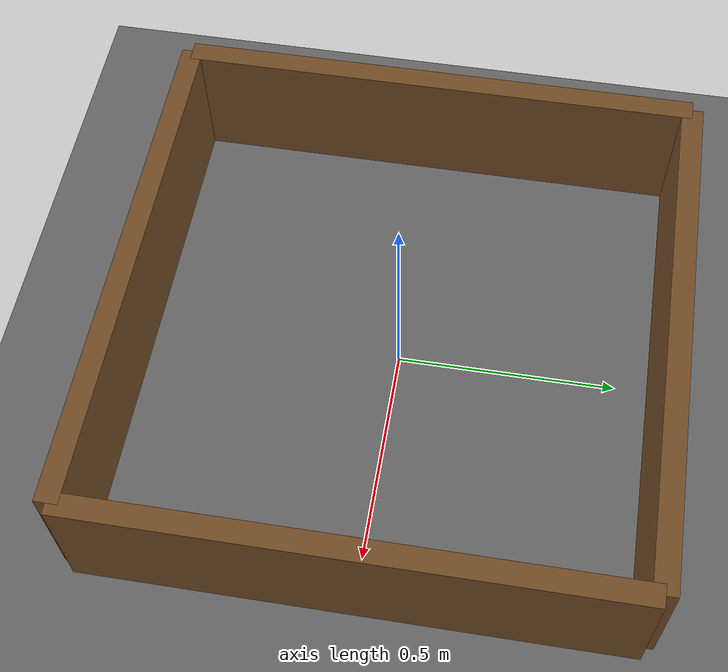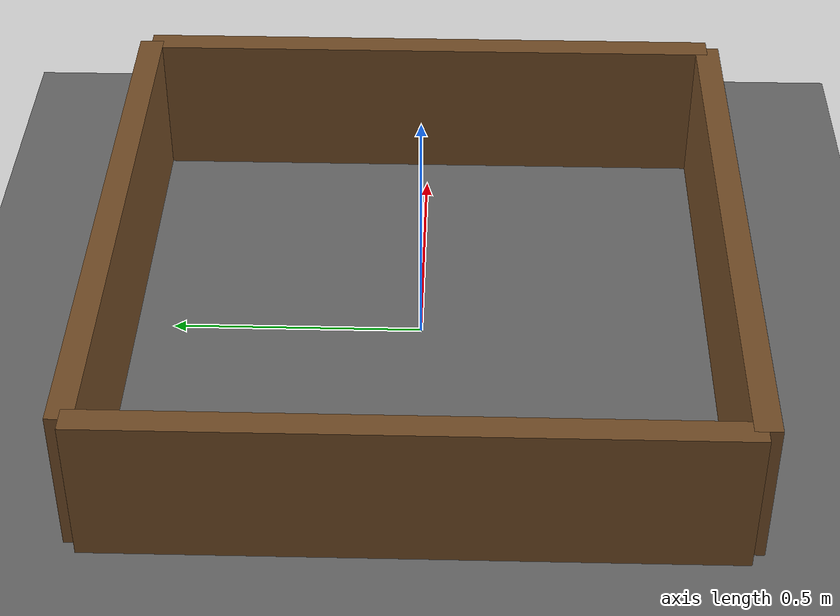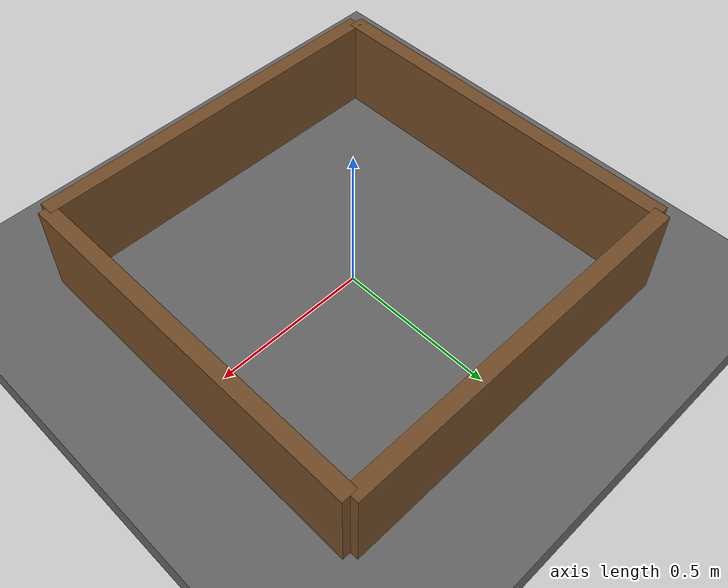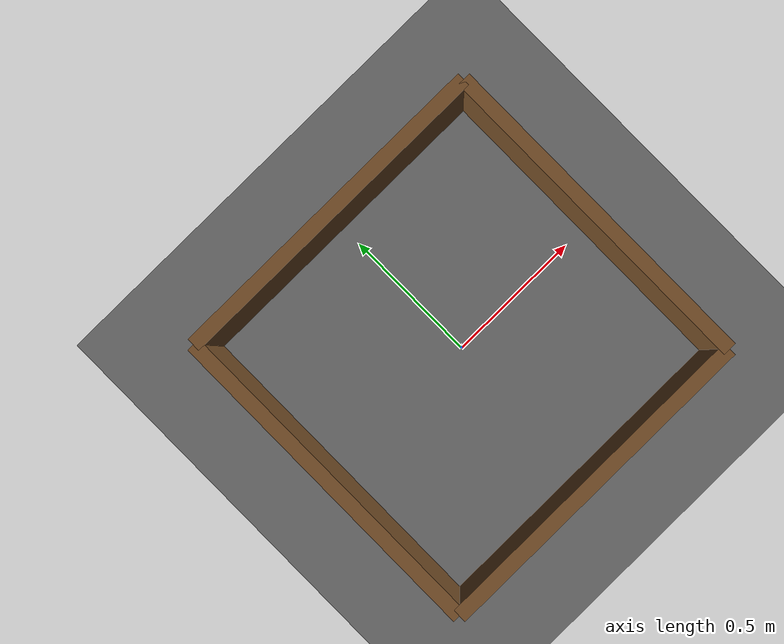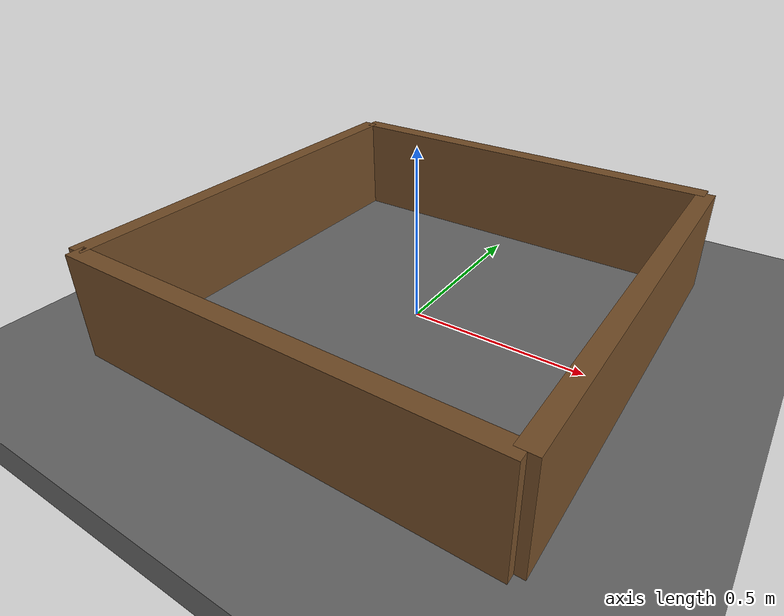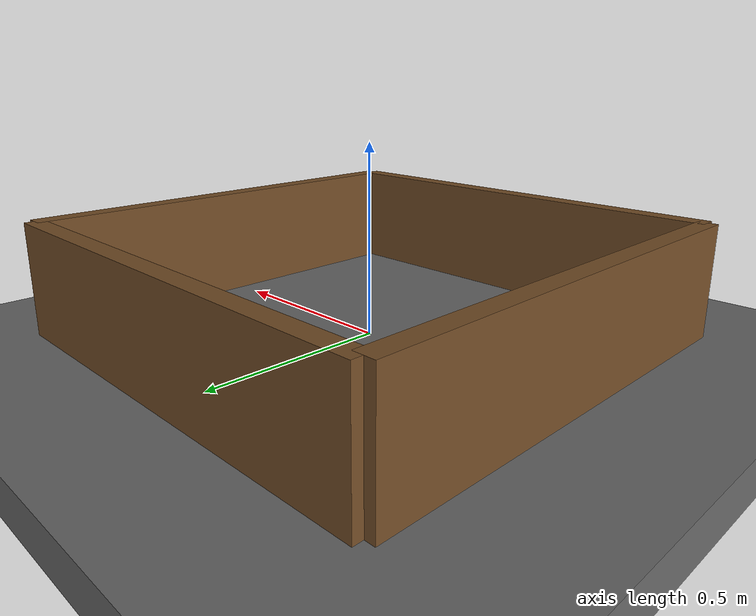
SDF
<?xml version="1.0" ?>
<sdf version="1.10">
  <world name="empty_world">
    <scene>
      <ambient>0.6 0.6 0.6 1</ambient>
      <background>0.5 0.5 0.5 1</background>
      <shadows>false</shadows>
    </scene>

    <plugin filename="gz-sim-physics-system" name="gz::sim::systems::Physics"/>
    <plugin filename="gz-sim-user-commands-system" name="gz::sim::systems::UserCommands"/>
    <plugin filename="gz-sim-scene-broadcaster-system" name="gz::sim::systems::SceneBroadcaster"/>
    <plugin filename="gz-sim-sensors-system" name="gz::sim::systems::Sensors">
      <render_engine>ogre2</render_engine>
    </plugin>

    <light name="sun" type="directional">
      <cast_shadows>false</cast_shadows>
      <pose>0 0 10 0 0 0</pose>
      <direction>-0.5 0.5 -1</direction>
    </light>

    <model name="ground">
      <static>true</static>
      <pose>0 0 -0.05 0 0 0</pose>
      <link name="ground_link">
        <collision name="ground_collision">
          <geometry>
            <box><size>50 50 0.1</size></box>
          </geometry>
        </collision>
        <visual name="ground_visual">
          <geometry>
            <box><size>50 50 0.1</size></box>
          </geometry>
          <material>
            <ambient>0.4 0.4 0.4 1</ambient>
            <diffuse>0.4 0.4 0.4 1</diffuse>
            <specular>0.05 0.05 0.05 1</specular>
          </material>
        </visual>
      </link>
    </model>

    <!-- Walls: unique names -->
    <include>
      <uri>model://wall120cm</uri>
      <name>wall_pos_x</name>
      <pose>0.6 0 0.15 0 0 1.57</pose>
    </include>

    <include>
      <uri>model://wall120cm</uri>
      <name>wall_neg_x</name>
      <pose>-0.6 0 0.15 0 0 1.57</pose>
    </include>

    <include>
      <uri>model://wall120cm</uri>
      <name>wall_pos_y</name>
      <pose>0 0.6 0.15 0 0 0</pose>
    </include>

    <include>
      <uri>model://wall120cm</uri>
      <name>wall_neg_y</name>
      <pose>0 -0.6 0.15 0 0 0</pose>
    </include>

  </world>
</sdf>

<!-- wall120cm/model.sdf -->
<sdf version="1.10">
    <model name="wall120cm">
        <static>true</static>
        <pose>0 0 0.025 0 0 0</pose> <!-- z=0.025 perquè reposi a terra (meitat del gruix) -->

        <link name="link">
            <collision name="collision">
            <geometry>
                <box>
                <size>1.2 0.05 0.3</size>
                </box>
            </geometry>
            </collision>

            <visual name="visual">
            <geometry>
                <box>
                <size>1.2 0.05 0.3</size>
                </box>
            </geometry>
            <material>
                <ambient>0.45 0.30 0.15 1</ambient>
                <diffuse>0.45 0.30 0.15 1</diffuse>
            </material>
            </visual>
        </link>
    </model>
</sdf>
